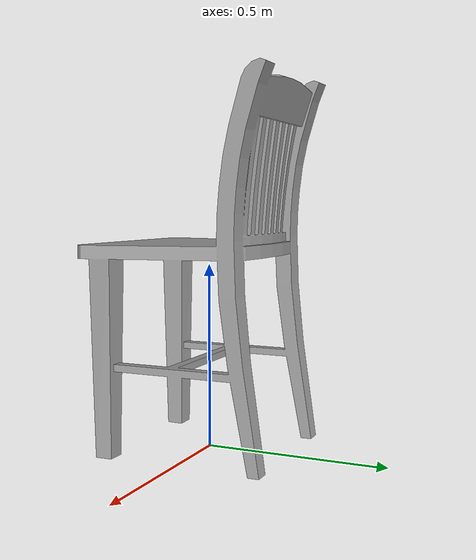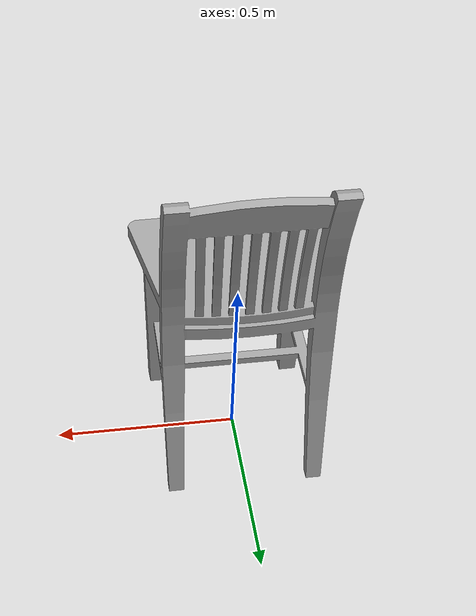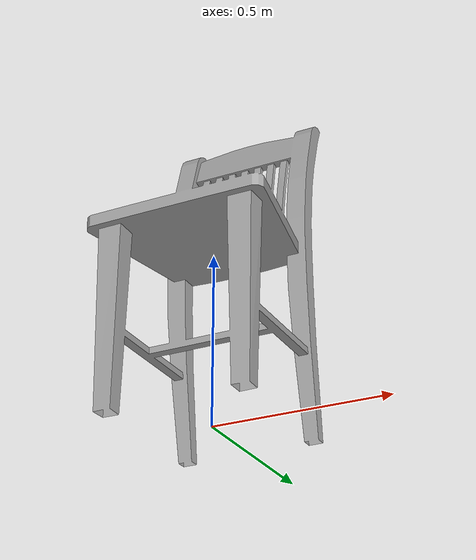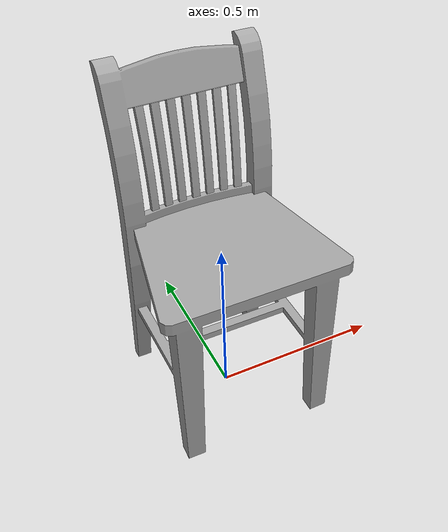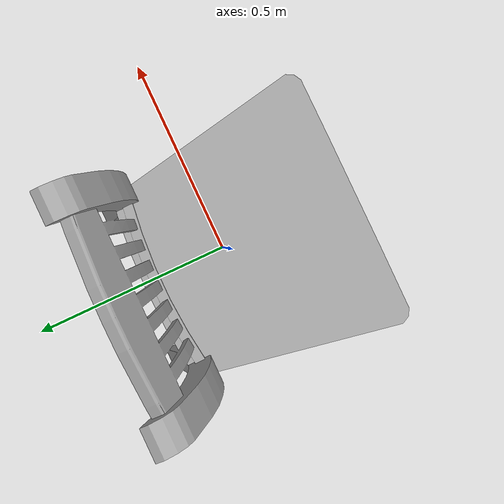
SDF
<?xml version="1.0" ?>
<sdf version="1.5">
  <model name='chair1'>
    <pose>0 0 0 0 0 0</pose>
    <static>1</static>
    <link name='body'>
      <collision name="chair1-coll">
        <pose>0 0 0 0 0 0</pose>
        <geometry>
          <mesh>
            <uri>model://chair1/meshes/chair1.dae</uri>
          </mesh>
        </geometry>
      </collision>
      <visual name='chair1'>
        <cast_shadows>1</cast_shadows>
        <geometry>
          <mesh>
            <uri>model://chair1/meshes/chair1.dae</uri>
          </mesh>
        </geometry>
      </visual>
      <velocity_decay>
        <linear>0</linear>
        <angular>0</angular>
      </velocity_decay>
      <self_collide>0</self_collide>
      <kinematic>0</kinematic>
      <gravity>1</gravity>
    </link>
  </model>

</sdf>
